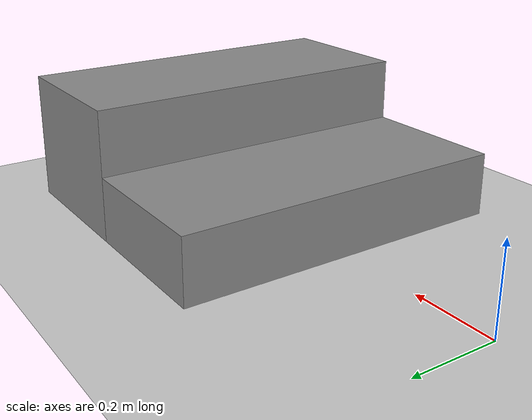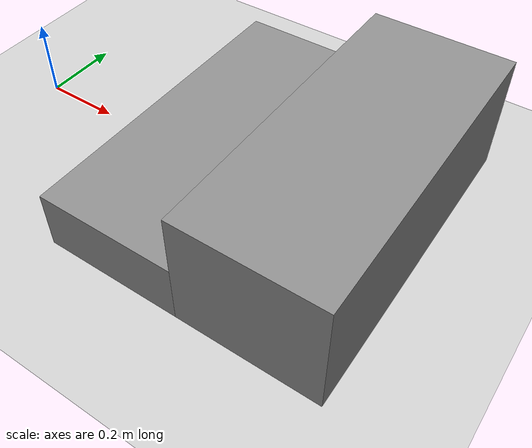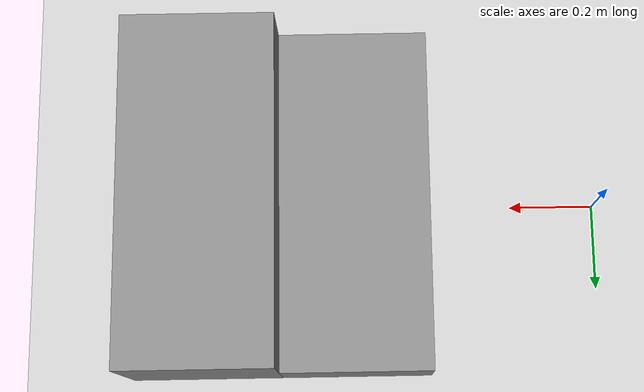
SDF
<?xml version="1.0" ?>
<sdf version="1.6">
  <world name="empty">
    <physics name="1ms" type="ignored">
      <max_step_size>0.001</max_step_size>
      <real_time_factor>1.0</real_time_factor>
    </physics>
    <plugin
        filename="gz-sim-sensors-system"
        name="gz::sim::systems::Sensors">
      <render_engine>ogre2</render_engine>
    </plugin>
    <plugin
        filename="gz-sim-physics-system"
        name="gz::sim::systems::Physics">
    </plugin>
    <plugin
        filename="gz-sim-user-commands-system"
        name="gz::sim::systems::UserCommands">
    </plugin>
    <plugin
        filename="gz-sim-scene-broadcaster-system"
        name="gz::sim::systems::SceneBroadcaster">
    </plugin>

    <light type="directional" name="sun">
      <cast_shadows>true</cast_shadows>
      <pose>0 0 10 0 0 0</pose>
      <diffuse>0.8 0.8 0.8 1</diffuse>
      <specular>0.2 0.2 0.2 1</specular>
      <attenuation>
        <range>1000</range>
        <constant>0.9</constant>
        <linear>0.01</linear>
        <quadratic>0.001</quadratic>
      </attenuation>
      <direction>-0.5 0.1 -0.9</direction>
    </light>

    <model name="ground_plane">
      <static>true</static>
      <link name="link">
        <collision name="collision">
          <geometry>
            <plane>
              <normal>0 0 1</normal>
              <size>100 100</size>
            </plane>
          </geometry>
          <surface>
            <friction>
              <ode>
                <mu>3.0</mu>
                <mu2>3.0</mu2>
                <fdir1>1 0 0</fdir1>
                <slip1>0.0</slip1>
                <slip2>0.0</slip2>
              </ode>
            </friction>
          </surface>
        </collision>
        <visual name="visual">
          <geometry>
            <plane>
              <normal>0 0 1</normal>
              <size>100 100</size>
            </plane>
          </geometry>
          <material>
            <ambient>0.8 0.8 0.8 1</ambient>
            <diffuse>0.8 0.8 0.8 1</diffuse>
            <specular>0.8 0.8 0.8 1</specular>
          </material>
        </visual>
      </link>
    </model>

    <model name="fixed_step_01">
      <static>true</static>
      <pose>0.575 0.0 0.075 0 0 0</pose>
      <link name="link">
        <collision name="collision">
          <geometry>
            <box>
              <size>0.35 0.80 0.15</size>
            </box>
          </geometry>
          <surface>
            <friction>
              <ode>
                <mu>3.0</mu>
                <mu2>3.0</mu2>
                <fdir1>1 0 0</fdir1>
                <slip1>0.0</slip1>
                <slip2>0.0</slip2>
              </ode>
            </friction>
          </surface>
        </collision>
        <visual name="visual">
          <geometry>
            <box>
              <size>0.35 0.80 0.15</size>
            </box>
          </geometry>
          <material>
            <ambient>0.45 0.45 0.45 1</ambient>
            <diffuse>0.55 0.55 0.55 1</diffuse>
            <specular>0.2 0.2 0.2 1</specular>
          </material>
        </visual>
      </link>
    </model>

    <model name="fixed_step_02">
      <static>true</static>
      <pose>0.925 0.0 0.150 0 0 0</pose>
      <link name="link">
        <collision name="collision">
          <geometry>
            <box>
              <size>0.35 0.80 0.30</size>
            </box>
          </geometry>
          <surface>
            <friction>
              <ode>
                <mu>3.0</mu>
                <mu2>3.0</mu2>
                <fdir1>1 0 0</fdir1>
                <slip1>0.0</slip1>
                <slip2>0.0</slip2>
              </ode>
            </friction>
          </surface>
        </collision>
        <visual name="visual">
          <geometry>
            <box>
              <size>0.35 0.80 0.30</size>
            </box>
          </geometry>
          <material>
            <ambient>0.45 0.45 0.45 1</ambient>
            <diffuse>0.55 0.55 0.55 1</diffuse>
            <specular>0.2 0.2 0.2 1</specular>
          </material>
        </visual>
      </link>
    </model>

  </world>
</sdf>
